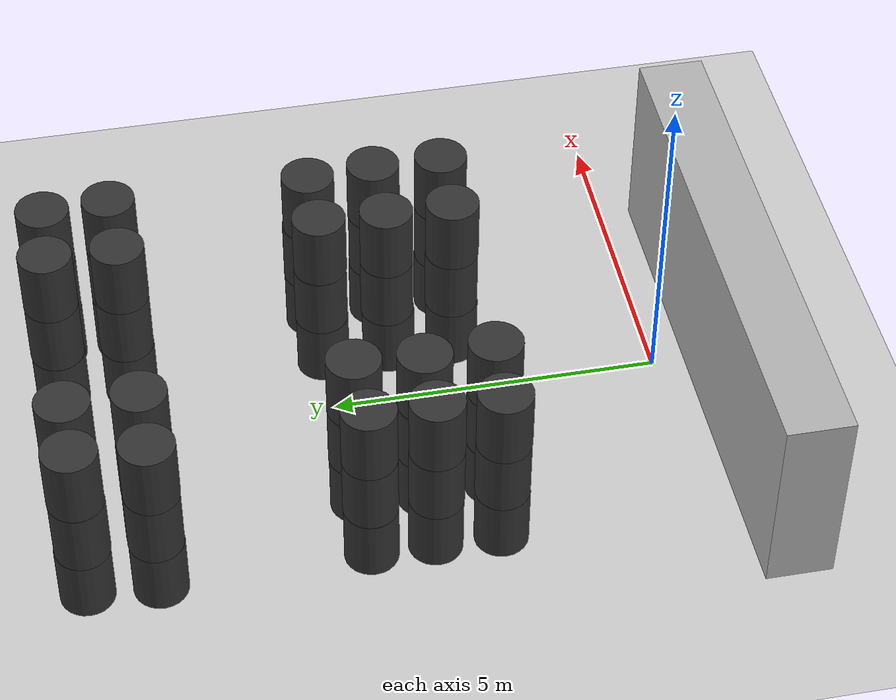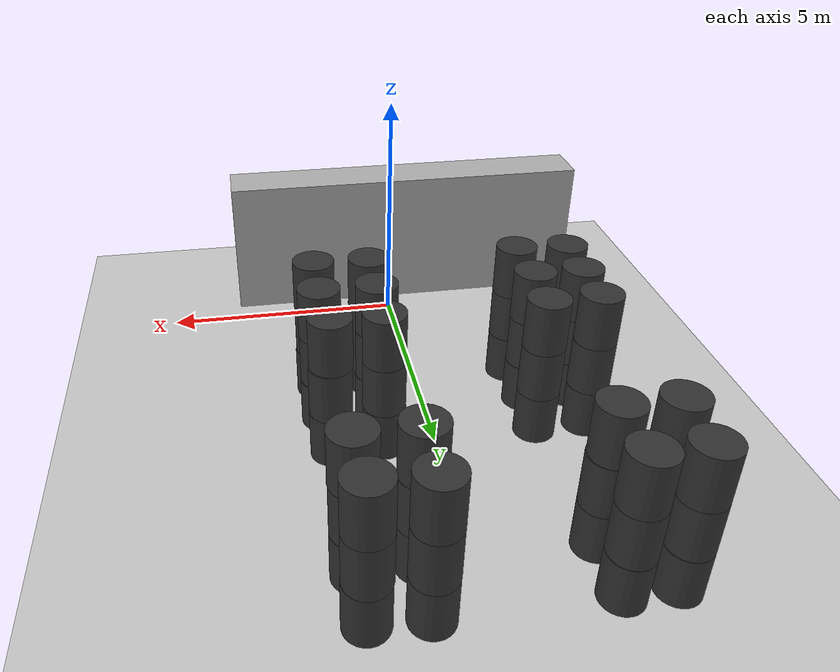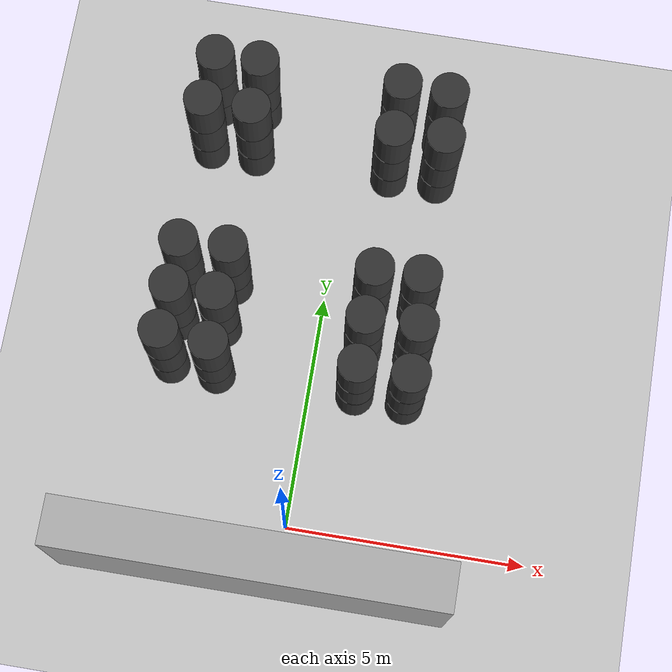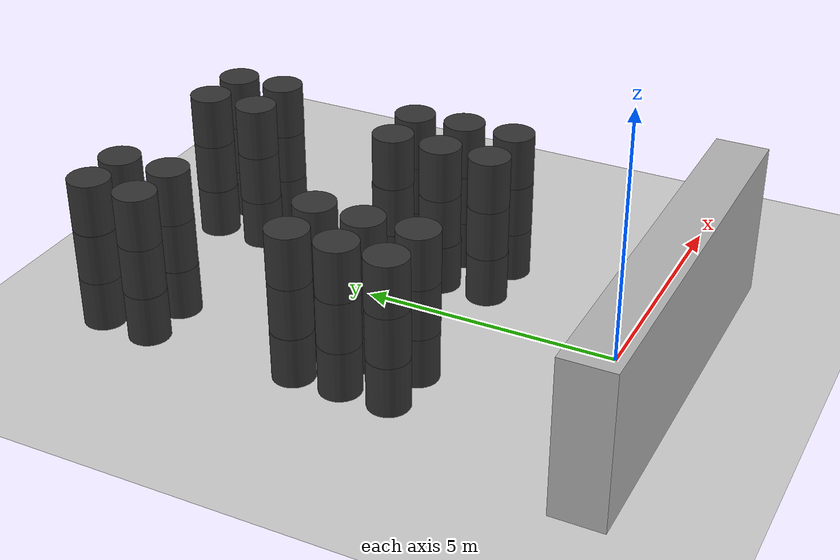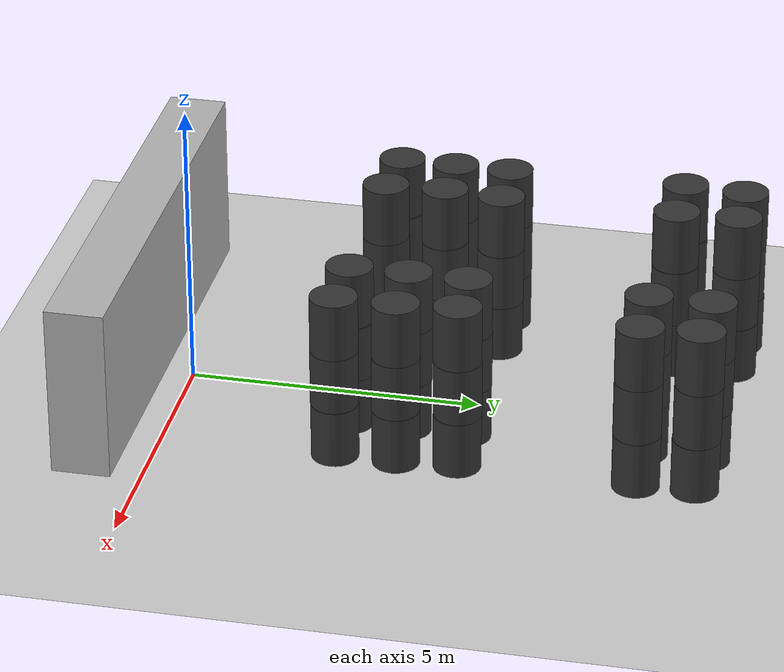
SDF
<sdf version="1.6">
 <world name="default">
  <include><uri>model://ground_plane</uri></include>
  <model name="wall_2">
   <pose frame="sim_world">-0.5 -1.0 1.5 0 0 0</pose>
   <static>True</static>
   <link name="wall_2_link">
    <inertial>
     <mass>100</mass>
     <inertia>
      <ixx>0.166667</ixx>
      <ixy>0</ixy>
      <ixz>0</ixz>
      <iyy>0.166667</iyy>
      <iyz>0</iyz>
      <izz>0.166667</izz>
     </inertia>
    </inertial>
    <collision name="wall_2_collision">
     <geometry><box><size>8.0 1.0 3.0</size></box></geometry>
     <max_contacts>100</max_contacts>
    </collision>
    <visual name="wall_2_visual">
     <geometry><box><size>8.0 1.0 3.0</size></box></geometry>
     <material><ambient>0.7 0.7 0.7 1</ambient><diffuse>0.7 0.7 0.7 1</diffuse></material>
    </visual>
   </link>
  </model>
  <model name="cylinder_0">
   <pose frame="sim_world">-2.99331092369 3.04628800812 0.5 0 -0 0</pose>
   <static>True</static>
   <link name="cylinder_0_link">
    <inertial>
     <mass>100</mass>
     <inertia><ixx>0.145833</ixx><ixy>0</ixy><ixz>0</ixz><iyy>0.145833</iyy><iyz>0</iyz><izz>0.125</izz></inertia>
    </inertial>
    <collision name="cylinder_0_collision">
     <geometry><cylinder><length>1.0</length><radius>0.4</radius></cylinder></geometry>
     <max_contacts>100</max_contacts>
    </collision>
    <visual name="cylinder_0_visual">
     <geometry><cylinder><length>1.0</length><radius>0.4</radius></cylinder></geometry>
     <material><ambient>0.2 0.2 0.2 1</ambient><diffuse>0.2 0.2 0.2 1</diffuse></material>
    </visual>
   </link>
  </model>
  <model name="cylinder_1">
   <pose frame="sim_world">-2.99128336379 3.05090034139 1.5 0 -0 0</pose>
   <static>True</static>
   <link name="cylinder_1_link">
    <inertial>
     <mass>100</mass>
     <inertia><ixx>0.145833</ixx><ixy>0</ixy><ixz>0</ixz><iyy>0.145833</iyy><iyz>0</iyz><izz>0.125</izz></inertia>
    </inertial>
    <collision name="cylinder_1_collision">
     <geometry><cylinder><length>1.0</length><radius>0.4</radius></cylinder></geometry>
     <max_contacts>100</max_contacts>
    </collision>
    <visual name="cylinder_1_visual">
     <geometry><cylinder><length>1.0</length><radius>0.4</radius></cylinder></geometry>
     <material><ambient>0.2 0.2 0.2 1</ambient><diffuse>0.2 0.2 0.2 1</diffuse></material>
    </visual>
   </link>
  </model>
  <model name="cylinder_2">
   <pose frame="sim_world">-3.0080423608 3.05019383698 2.5 0 -0 0</pose>
   <static>True</static>
   <link name="cylinder_2_link">
    <inertial>
     <mass>100</mass>
     <inertia><ixx>0.145833</ixx><ixy>0</ixy><ixz>0</ixz><iyy>0.145833</iyy><iyz>0</iyz><izz>0.125</izz></inertia>
    </inertial>
    <collision name="cylinder_2_collision">
     <geometry><cylinder><length>1.0</length><radius>0.4</radius></cylinder></geometry>
     <max_contacts>100</max_contacts>
    </collision>
    <visual name="cylinder_2_visual">
     <geometry><cylinder><length>1.0</length><radius>0.4</radius></cylinder></geometry>
     <material><ambient>0.2 0.2 0.2 1</ambient><diffuse>0.2 0.2 0.2 1</diffuse></material>
    </visual>
   </link>
  </model>
  <model name="cylinder_3">
   <pose frame="sim_world">-2.97151588663 4.01085530519 0.5 0 -0 0</pose>
   <static>True</static>
   <link name="cylinder_3_link">
    <inertial>
     <mass>100</mass>
     <inertia><ixx>0.145833</ixx><ixy>0</ixy><ixz>0</ixz><iyy>0.145833</iyy><iyz>0</iyz><izz>0.125</izz></inertia>
    </inertial>
    <collision name="cylinder_3_collision">
     <geometry><cylinder><length>1.0</length><radius>0.4</radius></cylinder></geometry>
     <max_contacts>100</max_contacts>
    </collision>
    <visual name="cylinder_3_visual">
     <geometry><cylinder><length>1.0</length><radius>0.4</radius></cylinder></geometry>
     <material><ambient>0.2 0.2 0.2 1</ambient><diffuse>0.2 0.2 0.2 1</diffuse></material>
    </visual>
   </link>
  </model>
  <model name="cylinder_4">
   <pose frame="sim_world">-2.97826024934 4.00481571654 1.5 0 -0 0</pose>
   <static>True</static>
   <link name="cylinder_4_link">
    <inertial>
     <mass>100</mass>
     <inertia><ixx>0.145833</ixx><ixy>0</ixy><ixz>0</ixz><iyy>0.145833</iyy><iyz>0</iyz><izz>0.125</izz></inertia>
    </inertial>
    <collision name="cylinder_4_collision">
     <geometry><cylinder><length>1.0</length><radius>0.4</radius></cylinder></geometry>
     <max_contacts>100</max_contacts>
    </collision>
    <visual name="cylinder_4_visual">
     <geometry><cylinder><length>1.0</length><radius>0.4</radius></cylinder></geometry>
     <material><ambient>0.2 0.2 0.2 1</ambient><diffuse>0.2 0.2 0.2 1</diffuse></material>
    </visual>
   </link>
  </model>
  <model name="cylinder_5">
   <pose frame="sim_world">-2.97621861829 4.0005700455 2.5 0 -0 0</pose>
   <static>True</static>
   <link name="cylinder_5_link">
    <inertial>
     <mass>100</mass>
     <inertia><ixx>0.145833</ixx><ixy>0</ixy><ixz>0</ixz><iyy>0.145833</iyy><iyz>0</iyz><izz>0.125</izz></inertia>
    </inertial>
    <collision name="cylinder_5_collision">
     <geometry><cylinder><length>1.0</length><radius>0.4</radius></cylinder></geometry>
     <max_contacts>100</max_contacts>
    </collision>
    <visual name="cylinder_5_visual">
     <geometry><cylinder><length>1.0</length><radius>0.4</radius></cylinder></geometry>
     <material><ambient>0.2 0.2 0.2 1</ambient><diffuse>0.2 0.2 0.2 1</diffuse></material>
    </visual>
   </link>
  </model>
  <model name="cylinder_6">
   <pose frame="sim_world">-2.97489112418 4.94994942638 0.5 0 -0 0</pose>
   <static>True</static>
   <link name="cylinder_6_link">
    <inertial>
     <mass>100</mass>
     <inertia><ixx>0.145833</ixx><ixy>0</ixy><ixz>0</ixz><iyy>0.145833</iyy><iyz>0</iyz><izz>0.125</izz></inertia>
    </inertial>
    <collision name="cylinder_6_collision">
     <geometry><cylinder><length>1.0</length><radius>0.4</radius></cylinder></geometry>
     <max_contacts>100</max_contacts>
    </collision>
    <visual name="cylinder_6_visual">
     <geometry><cylinder><length>1.0</length><radius>0.4</radius></cylinder></geometry>
     <material><ambient>0.2 0.2 0.2 1</ambient><diffuse>0.2 0.2 0.2 1</diffuse></material>
    </visual>
   </link>
  </model>
  <model name="cylinder_7">
   <pose frame="sim_world">-2.96457506904 4.95433120491 1.5 0 -0 0</pose>
   <static>True</static>
   <link name="cylinder_7_link">
    <inertial>
     <mass>100</mass>
     <inertia><ixx>0.145833</ixx><ixy>0</ixy><ixz>0</ixz><iyy>0.145833</iyy><iyz>0</iyz><izz>0.125</izz></inertia>
    </inertial>
    <collision name="cylinder_7_collision">
     <geometry><cylinder><length>1.0</length><radius>0.4</radius></cylinder></geometry>
     <max_contacts>100</max_contacts>
    </collision>
    <visual name="cylinder_7_visual">
     <geometry><cylinder><length>1.0</length><radius>0.4</radius></cylinder></geometry>
     <material><ambient>0.2 0.2 0.2 1</ambient><diffuse>0.2 0.2 0.2 1</diffuse></material>
    </visual>
   </link>
  </model>
  <model name="cylinder_8">
   <pose frame="sim_world">-2.96331615626 4.95802939447 2.5 0 -0 0</pose>
   <static>True</static>
   <link name="cylinder_8_link">
    <inertial>
     <mass>100</mass>
     <inertia><ixx>0.145833</ixx><ixy>0</ixy><ixz>0</ixz><iyy>0.145833</iyy><iyz>0</iyz><izz>0.125</izz></inertia>
    </inertial>
    <collision name="cylinder_8_collision">
     <geometry><cylinder><length>1.0</length><radius>0.4</radius></cylinder></geometry>
     <max_contacts>100</max_contacts>
    </collision>
    <visual name="cylinder_8_visual">
     <geometry><cylinder><length>1.0</length><radius>0.4</radius></cylinder></geometry>
     <material><ambient>0.2 0.2 0.2 1</ambient><diffuse>0.2 0.2 0.2 1</diffuse></material>
    </visual>
   </link>
  </model>
  <model name="cylinder_9">
   <pose frame="sim_world">-3.02466633321 8.0019167953 0.5 0 -0 0</pose>
   <static>True</static>
   <link name="cylinder_9_link">
    <inertial>
     <mass>100</mass>
     <inertia><ixx>0.145833</ixx><ixy>0</ixy><ixz>0</ixz><iyy>0.145833</iyy><iyz>0</iyz><izz>0.125</izz></inertia>
    </inertial>
    <collision name="cylinder_9_collision">
     <geometry><cylinder><length>1.0</length><radius>0.4</radius></cylinder></geometry>
     <max_contacts>100</max_contacts>
    </collision>
    <visual name="cylinder_9_visual">
     <geometry><cylinder><length>1.0</length><radius>0.4</radius></cylinder></geometry>
     <material><ambient>0.2 0.2 0.2 1</ambient><diffuse>0.2 0.2 0.2 1</diffuse></material>
    </visual>
   </link>
  </model>
  <model name="cylinder_10">
   <pose frame="sim_world">-3.0239855596 8.01013254635 1.5 0 -0 0</pose>
   <static>True</static>
   <link name="cylinder_10_link">
    <inertial>
     <mass>100</mass>
     <inertia><ixx>0.145833</ixx><ixy>0</ixy><ixz>0</ixz><iyy>0.145833</iyy><iyz>0</iyz><izz>0.125</izz></inertia>
    </inertial>
    <collision name="cylinder_10_collision">
     <geometry><cylinder><length>1.0</length><radius>0.4</radius></cylinder></geometry>
     <max_contacts>100</max_contacts>
    </collision>
    <visual name="cylinder_10_visual">
     <geometry><cylinder><length>1.0</length><radius>0.4</radius></cylinder></geometry>
     <material><ambient>0.2 0.2 0.2 1</ambient><diffuse>0.2 0.2 0.2 1</diffuse></material>
    </visual>
   </link>
  </model>
  <model name="cylinder_11">
   <pose frame="sim_world">-3.03300908969 8.00423963865 2.5 0 -0 0</pose>
   <static>True</static>
   <link name="cylinder_11_link">
    <inertial>
     <mass>100</mass>
     <inertia><ixx>0.145833</ixx><ixy>0</ixy><ixz>0</ixz><iyy>0.145833</iyy><iyz>0</iyz><izz>0.125</izz></inertia>
    </inertial>
    <collision name="cylinder_11_collision">
     <geometry><cylinder><length>1.0</length><radius>0.4</radius></cylinder></geometry>
     <max_contacts>100</max_contacts>
    </collision>
    <visual name="cylinder_11_visual">
     <geometry><cylinder><length>1.0</length><radius>0.4</radius></cylinder></geometry>
     <material><ambient>0.2 0.2 0.2 1</ambient><diffuse>0.2 0.2 0.2 1</diffuse></material>
    </visual>
   </link>
  </model>
  <model name="cylinder_12">
   <pose frame="sim_world">-2.96160246649 9.04521391994 0.5 0 -0 0</pose>
   <static>True</static>
   <link name="cylinder_12_link">
    <inertial>
     <mass>100</mass>
     <inertia><ixx>0.145833</ixx><ixy>0</ixy><ixz>0</ixz><iyy>0.145833</iyy><iyz>0</iyz><izz>0.125</izz></inertia>
    </inertial>
    <collision name="cylinder_12_collision">
     <geometry><cylinder><length>1.0</length><radius>0.4</radius></cylinder></geometry>
     <max_contacts>100</max_contacts>
    </collision>
    <visual name="cylinder_12_visual">
     <geometry><cylinder><length>1.0</length><radius>0.4</radius></cylinder></geometry>
     <material><ambient>0.2 0.2 0.2 1</ambient><diffuse>0.2 0.2 0.2 1</diffuse></material>
    </visual>
   </link>
  </model>
  <model name="cylinder_13">
   <pose frame="sim_world">-2.96980164215 9.03584769395 1.5 0 -0 0</pose>
   <static>True</static>
   <link name="cylinder_13_link">
    <inertial>
     <mass>100</mass>
     <inertia><ixx>0.145833</ixx><ixy>0</ixy><ixz>0</ixz><iyy>0.145833</iyy><iyz>0</iyz><izz>0.125</izz></inertia>
    </inertial>
    <collision name="cylinder_13_collision">
     <geometry><cylinder><length>1.0</length><radius>0.4</radius></cylinder></geometry>
     <max_contacts>100</max_contacts>
    </collision>
    <visual name="cylinder_13_visual">
     <geometry><cylinder><length>1.0</length><radius>0.4</radius></cylinder></geometry>
     <material><ambient>0.2 0.2 0.2 1</ambient><diffuse>0.2 0.2 0.2 1</diffuse></material>
    </visual>
   </link>
  </model>
  <model name="cylinder_14">
   <pose frame="sim_world">-2.96016807215 9.04546093262 2.5 0 -0 0</pose>
   <static>True</static>
   <link name="cylinder_14_link">
    <inertial>
     <mass>100</mass>
     <inertia><ixx>0.145833</ixx><ixy>0</ixy><ixz>0</ixz><iyy>0.145833</iyy><iyz>0</iyz><izz>0.125</izz></inertia>
    </inertial>
    <collision name="cylinder_14_collision">
     <geometry><cylinder><length>1.0</length><radius>0.4</radius></cylinder></geometry>
     <max_contacts>100</max_contacts>
    </collision>
    <visual name="cylinder_14_visual">
     <geometry><cylinder><length>1.0</length><radius>0.4</radius></cylinder></geometry>
     <material><ambient>0.2 0.2 0.2 1</ambient><diffuse>0.2 0.2 0.2 1</diffuse></material>
    </visual>
   </link>
  </model>
  <model name="cylinder_45">
   <pose frame="sim_world">-1.9965809761 2.98294327902 0.5 0 -0 0</pose>
   <static>True</static>
   <link name="cylinder_45_link">
    <inertial>
     <mass>100</mass>
     <inertia><ixx>0.145833</ixx><ixy>0</ixy><ixz>0</ixz><iyy>0.145833</iyy><iyz>0</iyz><izz>0.125</izz></inertia>
    </inertial>
    <collision name="cylinder_45_collision">
     <geometry><cylinder><length>1.0</length><radius>0.4</radius></cylinder></geometry>
     <max_contacts>100</max_contacts>
    </collision>
    <visual name="cylinder_45_visual">
     <geometry><cylinder><length>1.0</length><radius>0.4</radius></cylinder></geometry>
     <material><ambient>0.2 0.2 0.2 1</ambient><diffuse>0.2 0.2 0.2 1</diffuse></material>
    </visual>
   </link>
  </model>
  <model name="cylinder_46">
   <pose frame="sim_world">-1.99809626401 2.97375279975 1.5 0 -0 0</pose>
   <static>True</static>
   <link name="cylinder_46_link">
    <inertial>
     <mass>100</mass>
     <inertia><ixx>0.145833</ixx><ixy>0</ixy><ixz>0</ixz><iyy>0.145833</iyy><iyz>0</iyz><izz>0.125</izz></inertia>
    </inertial>
    <collision name="cylinder_46_collision">
     <geometry><cylinder><length>1.0</length><radius>0.4</radius></cylinder></geometry>
     <max_contacts>100</max_contacts>
    </collision>
    <visual name="cylinder_46_visual">
     <geometry><cylinder><length>1.0</length><radius>0.4</radius></cylinder></geometry>
     <material><ambient>0.2 0.2 0.2 1</ambient><diffuse>0.2 0.2 0.2 1</diffuse></material>
    </visual>
   </link>
  </model>
  <model name="cylinder_47">
   <pose frame="sim_world">-1.99705812932 2.97250672579 2.5 0 -0 0</pose>
   <static>True</static>
   <link name="cylinder_47_link">
    <inertial>
     <mass>100</mass>
     <inertia><ixx>0.145833</ixx><ixy>0</ixy><ixz>0</ixz><iyy>0.145833</iyy><iyz>0</iyz><izz>0.125</izz></inertia>
    </inertial>
    <collision name="cylinder_47_collision">
     <geometry><cylinder><length>1.0</length><radius>0.4</radius></cylinder></geometry>
     <max_contacts>100</max_contacts>
    </collision>
    <visual name="cylinder_47_visual">
     <geometry><cylinder><length>1.0</length><radius>0.4</radius></cylinder></geometry>
     <material><ambient>0.2 0.2 0.2 1</ambient><diffuse>0.2 0.2 0.2 1</diffuse></material>
    </visual>
   </link>
  </model>
  <model name="cylinder_48">
   <pose frame="sim_world">-2.0396847009 4.00374695528 0.5 0 -0 0</pose>
   <static>True</static>
   <link name="cylinder_48_link">
    <inertial>
     <mass>100</mass>
     <inertia><ixx>0.145833</ixx><ixy>0</ixy><ixz>0</ixz><iyy>0.145833</iyy><iyz>0</iyz><izz>0.125</izz></inertia>
    </inertial>
    <collision name="cylinder_48_collision">
     <geometry><cylinder><length>1.0</length><radius>0.4</radius></cylinder></geometry>
     <max_contacts>100</max_contacts>
    </collision>
    <visual name="cylinder_48_visual">
     <geometry><cylinder><length>1.0</length><radius>0.4</radius></cylinder></geometry>
     <material><ambient>0.2 0.2 0.2 1</ambient><diffuse>0.2 0.2 0.2 1</diffuse></material>
    </visual>
   </link>
   <model name="radiation_source_cylinder_48">
    <static>true</static>
    <link name="link_radiation_source_cylinder_48">
     <visual name="visual_radiation_source_cylinder_48_0">
      <geometry><box><size>0.1 0.1 0.1</size></box></geometry>
      <material><ambient>1 0.0  0 1.0</ambient><diffuse>1 0.0  0 1.0</diffuse></material>
     </visual>
     <visual name="visual_radiation_source_cylinder_48_1">
      <pose>0 0 2.0 0 0 0</pose>
      <geometry><box><size>0.1 0.1 0.1</size></box></geometry>
      <material><ambient>0 1.0  0 1.0</ambient><diffuse>0 1.0  0 1.0</diffuse></material>
     </visual>
     <sensor name="radiation_source_cylinder_48" type="radiation_source">
      <always_on>1</always_on>
      <update_rate>100.0</update_rate>
      <topic>source_0/gamma</topic>
      <plugin filename="libradiation_source_plugin.so" name="radiation_source_plugin"/>
     </sensor>
    </link>
   </model>
  </model>
  <model name="cylinder_49">
   <pose frame="sim_world">-2.04642130865 4.00503901667 1.5 0 -0 0</pose>
   <static>True</static>
   <link name="cylinder_49_link">
    <inertial>
     <mass>100</mass>
     <inertia><ixx>0.145833</ixx><ixy>0</ixy><ixz>0</ixz><iyy>0.145833</iyy><iyz>0</iyz><izz>0.125</izz></inertia>
    </inertial>
    <collision name="cylinder_49_collision">
     <geometry><cylinder><length>1.0</length><radius>0.4</radius></cylinder></geometry>
     <max_contacts>100</max_contacts>
    </collision>
    <visual name="cylinder_49_visual">
     <geometry><cylinder><length>1.0</length><radius>0.4</radius></cylinder></geometry>
     <material><ambient>0.2 0.2 0.2 1</ambient><diffuse>0.2 0.2 0.2 1</diffuse></material>
    </visual>
   </link>
  </model>
  <model name="cylinder_50">
   <pose frame="sim_world">-2.042014486 3.99655097344 2.5 0 -0 0</pose>
   <static>True</static>
   <link name="cylinder_50_link">
    <inertial>
     <mass>100</mass>
     <inertia><ixx>0.145833</ixx><ixy>0</ixy><ixz>0</ixz><iyy>0.145833</iyy><iyz>0</iyz><izz>0.125</izz></inertia>
    </inertial>
    <collision name="cylinder_50_collision">
     <geometry><cylinder><length>1.0</length><radius>0.4</radius></cylinder></geometry>
     <max_contacts>100</max_contacts>
    </collision>
    <visual name="cylinder_50_visual">
     <geometry><cylinder><length>1.0</length><radius>0.4</radius></cylinder></geometry>
     <material><ambient>0.2 0.2 0.2 1</ambient><diffuse>0.2 0.2 0.2 1</diffuse></material>
    </visual>
   </link>
  </model>
  <model name="cylinder_51">
   <pose frame="sim_world">-1.96935428081 4.98453832237 0.5 0 -0 0</pose>
   <static>True</static>
   <link name="cylinder_51_link">
    <inertial>
     <mass>100</mass>
     <inertia><ixx>0.145833</ixx><ixy>0</ixy><ixz>0</ixz><iyy>0.145833</iyy><iyz>0</iyz><izz>0.125</izz></inertia>
    </inertial>
    <collision name="cylinder_51_collision">
     <geometry><cylinder><length>1.0</length><radius>0.4</radius></cylinder></geometry>
     <max_contacts>100</max_contacts>
    </collision>
    <visual name="cylinder_51_visual">
     <geometry><cylinder><length>1.0</length><radius>0.4</radius></cylinder></geometry>
     <material><ambient>0.2 0.2 0.2 1</ambient><diffuse>0.2 0.2 0.2 1</diffuse></material>
    </visual>
   </link>
  </model>
  <model name="cylinder_52">
   <pose frame="sim_world">-1.96369637914 4.99325317425 1.5 0 -0 0</pose>
   <static>True</static>
   <link name="cylinder_52_link">
    <inertial>
     <mass>100</mass>
     <inertia><ixx>0.145833</ixx><ixy>0</ixy><ixz>0</ixz><iyy>0.145833</iyy><iyz>0</iyz><izz>0.125</izz></inertia>
    </inertial>
    <collision name="cylinder_52_collision">
     <geometry><cylinder><length>1.0</length><radius>0.4</radius></cylinder></geometry>
     <max_contacts>100</max_contacts>
    </collision>
    <visual name="cylinder_52_visual">
     <geometry><cylinder><length>1.0</length><radius>0.4</radius></cylinder></geometry>
     <material><ambient>0.2 0.2 0.2 1</ambient><diffuse>0.2 0.2 0.2 1</diffuse></material>
    </visual>
   </link>
  </model>
  <model name="cylinder_53">
   <pose frame="sim_world">-1.96638210553 4.99357972346 2.5 0 -0 0</pose>
   <static>True</static>
   <link name="cylinder_53_link">
    <inertial>
     <mass>100</mass>
     <inertia><ixx>0.145833</ixx><ixy>0</ixy><ixz>0</ixz><iyy>0.145833</iyy><iyz>0</iyz><izz>0.125</izz></inertia>
    </inertial>
    <collision name="cylinder_53_collision">
     <geometry><cylinder><length>1.0</length><radius>0.4</radius></cylinder></geometry>
     <max_contacts>100</max_contacts>
    </collision>
    <visual name="cylinder_53_visual">
     <geometry><cylinder><length>1.0</length><radius>0.4</radius></cylinder></geometry>
     <material><ambient>0.2 0.2 0.2 1</ambient><diffuse>0.2 0.2 0.2 1</diffuse></material>
    </visual>
   </link>
  </model>
  <model name="cylinder_54">
   <pose frame="sim_world">-2.00919037113 7.99558735155 0.5 0 -0 0</pose>
   <static>True</static>
   <link name="cylinder_54_link">
    <inertial>
     <mass>100</mass>
     <inertia><ixx>0.145833</ixx><ixy>0</ixy><ixz>0</ixz><iyy>0.145833</iyy><iyz>0</iyz><izz>0.125</izz></inertia>
    </inertial>
    <collision name="cylinder_54_collision">
     <geometry><cylinder><length>1.0</length><radius>0.4</radius></cylinder></geometry>
     <max_contacts>100</max_contacts>
    </collision>
    <visual name="cylinder_54_visual">
     <geometry><cylinder><length>1.0</length><radius>0.4</radius></cylinder></geometry>
     <material><ambient>0.2 0.2 0.2 1</ambient><diffuse>0.2 0.2 0.2 1</diffuse></material>
    </visual>
   </link>
  </model>
  <model name="cylinder_55">
   <pose frame="sim_world">-2.00768485973 8.00068690969 1.5 0 -0 0</pose>
   <static>True</static>
   <link name="cylinder_55_link">
    <inertial>
     <mass>100</mass>
     <inertia><ixx>0.145833</ixx><ixy>0</ixy><ixz>0</ixz><iyy>0.145833</iyy><iyz>0</iyz><izz>0.125</izz></inertia>
    </inertial>
    <collision name="cylinder_55_collision">
     <geometry><cylinder><length>1.0</length><radius>0.4</radius></cylinder></geometry>
     <max_contacts>100</max_contacts>
    </collision>
    <visual name="cylinder_55_visual">
     <geometry><cylinder><length>1.0</length><radius>0.4</radius></cylinder></geometry>
     <material><ambient>0.2 0.2 0.2 1</ambient><diffuse>0.2 0.2 0.2 1</diffuse></material>
    </visual>
   </link>
  </model>
  <model name="cylinder_56">
   <pose frame="sim_world">-2.02386634613 7.99578511601 2.5 0 -0 0</pose>
   <static>True</static>
   <link name="cylinder_56_link">
    <inertial>
     <mass>100</mass>
     <inertia><ixx>0.145833</ixx><ixy>0</ixy><ixz>0</ixz><iyy>0.145833</iyy><iyz>0</iyz><izz>0.125</izz></inertia>
    </inertial>
    <collision name="cylinder_56_collision">
     <geometry><cylinder><length>1.0</length><radius>0.4</radius></cylinder></geometry>
     <max_contacts>100</max_contacts>
    </collision>
    <visual name="cylinder_56_visual">
     <geometry><cylinder><length>1.0</length><radius>0.4</radius></cylinder></geometry>
     <material><ambient>0.2 0.2 0.2 1</ambient><diffuse>0.2 0.2 0.2 1</diffuse></material>
    </visual>
   </link>
  </model>
  <model name="cylinder_57">
   <pose frame="sim_world">-2.03265426036 9.05511991973 0.5 0 -0 0</pose>
   <static>True</static>
   <link name="cylinder_57_link">
    <inertial>
     <mass>100</mass>
     <inertia><ixx>0.145833</ixx><ixy>0</ixy><ixz>0</ixz><iyy>0.145833</iyy><iyz>0</iyz><izz>0.125</izz></inertia>
    </inertial>
    <collision name="cylinder_57_collision">
     <geometry><cylinder><length>1.0</length><radius>0.4</radius></cylinder></geometry>
     <max_contacts>100</max_contacts>
    </collision>
    <visual name="cylinder_57_visual">
     <geometry><cylinder><length>1.0</length><radius>0.4</radius></cylinder></geometry>
     <material><ambient>0.2 0.2 0.2 1</ambient><diffuse>0.2 0.2 0.2 1</diffuse></material>
    </visual>
   </link>
  </model>
  <model name="cylinder_58">
   <pose frame="sim_world">-2.03909711334 9.04867957451 1.5 0 -0 0</pose>
   <static>True</static>
   <link name="cylinder_58_link">
    <inertial>
     <mass>100</mass>
     <inertia><ixx>0.145833</ixx><ixy>0</ixy><ixz>0</ixz><iyy>0.145833</iyy><iyz>0</iyz><izz>0.125</izz></inertia>
    </inertial>
    <collision name="cylinder_58_collision">
     <geometry><cylinder><length>1.0</length><radius>0.4</radius></cylinder></geometry>
     <max_contacts>100</max_contacts>
    </collision>
    <visual name="cylinder_58_visual">
     <geometry><cylinder><length>1.0</length><radius>0.4</radius></cylinder></geometry>
     <material><ambient>0.2 0.2 0.2 1</ambient><diffuse>0.2 0.2 0.2 1</diffuse></material>
    </visual>
   </link>
  </model>
  <model name="cylinder_59">
   <pose frame="sim_world">-2.02379885524 9.05241032436 2.5 0 -0 0</pose>
   <static>True</static>
   <link name="cylinder_59_link">
    <inertial>
     <mass>100</mass>
     <inertia><ixx>0.145833</ixx><ixy>0</ixy><ixz>0</ixz><iyy>0.145833</iyy><iyz>0</iyz><izz>0.125</izz></inertia>
    </inertial>
    <collision name="cylinder_59_collision">
     <geometry><cylinder><length>1.0</length><radius>0.4</radius></cylinder></geometry>
     <max_contacts>100</max_contacts>
    </collision>
    <visual name="cylinder_59_visual">
     <geometry><cylinder><length>1.0</length><radius>0.4</radius></cylinder></geometry>
     <material><ambient>0.2 0.2 0.2 1</ambient><diffuse>0.2 0.2 0.2 1</diffuse></material>
    </visual>
   </link>
  </model>
  <model name="cylinder_90">
   <pose frame="sim_world">0.975886664659 2.99407561772 0.5 0 -0 0</pose>
   <static>True</static>
   <link name="cylinder_90_link">
    <inertial>
     <mass>100</mass>
     <inertia><ixx>0.145833</ixx><ixy>0</ixy><ixz>0</ixz><iyy>0.145833</iyy><iyz>0</iyz><izz>0.125</izz></inertia>
    </inertial>
    <collision name="cylinder_90_collision">
     <geometry><cylinder><length>1.0</length><radius>0.4</radius></cylinder></geometry>
     <max_contacts>100</max_contacts>
    </collision>
    <visual name="cylinder_90_visual">
     <geometry><cylinder><length>1.0</length><radius>0.4</radius></cylinder></geometry>
     <material><ambient>0.2 0.2 0.2 1</ambient><diffuse>0.2 0.2 0.2 1</diffuse></material>
    </visual>
   </link>
  </model>
  <model name="cylinder_91">
   <pose frame="sim_world">0.973525885252 3.00282759207 1.5 0 -0 0</pose>
   <static>True</static>
   <link name="cylinder_91_link">
    <inertial>
     <mass>100</mass>
     <inertia><ixx>0.145833</ixx><ixy>0</ixy><ixz>0</ixz><iyy>0.145833</iyy><iyz>0</iyz><izz>0.125</izz></inertia>
    </inertial>
    <collision name="cylinder_91_collision">
     <geometry><cylinder><length>1.0</length><radius>0.4</radius></cylinder></geometry>
     <max_contacts>100</max_contacts>
    </collision>
    <visual name="cylinder_91_visual">
     <geometry><cylinder><length>1.0</length><radius>0.4</radius></cylinder></geometry>
     <material><ambient>0.2 0.2 0.2 1</ambient><diffuse>0.2 0.2 0.2 1</diffuse></material>
    </visual>
   </link>
  </model>
  <model name="cylinder_92">
   <pose frame="sim_world">0.969030290826 2.99612800961 2.5 0 -0 0</pose>
   <static>True</static>
   <link name="cylinder_92_link">
    <inertial>
     <mass>100</mass>
     <inertia><ixx>0.145833</ixx><ixy>0</ixy><ixz>0</ixz><iyy>0.145833</iyy><iyz>0</iyz><izz>0.125</izz></inertia>
    </inertial>
    <collision name="cylinder_92_collision">
     <geometry><cylinder><length>1.0</length><radius>0.4</radius></cylinder></geometry>
     <max_contacts>100</max_contacts>
    </collision>
    <visual name="cylinder_92_visual">
     <geometry><cylinder><length>1.0</length><radius>0.4</radius></cylinder></geometry>
     <material><ambient>0.2 0.2 0.2 1</ambient><diffuse>0.2 0.2 0.2 1</diffuse></material>
    </visual>
   </link>
  </model>
  <model name="cylinder_93">
   <pose frame="sim_world">0.986058464239 3.9816153806 0.5 0 -0 0</pose>
   <static>True</static>
   <link name="cylinder_93_link">
    <inertial>
     <mass>100</mass>
     <inertia><ixx>0.145833</ixx><ixy>0</ixy><ixz>0</ixz><iyy>0.145833</iyy><iyz>0</iyz><izz>0.125</izz></inertia>
    </inertial>
    <collision name="cylinder_93_collision">
     <geometry><cylinder><length>1.0</length><radius>0.4</radius></cylinder></geometry>
     <max_contacts>100</max_contacts>
    </collision>
    <visual name="cylinder_93_visual">
     <geometry><cylinder><length>1.0</length><radius>0.4</radius></cylinder></geometry>
     <material><ambient>0.2 0.2 0.2 1</ambient><diffuse>0.2 0.2 0.2 1</diffuse></material>
    </visual>
   </link>
  </model>
  <model name="cylinder_94">
   <pose frame="sim_world">0.974024711108 3.99916762449 1.5 0 -0 0</pose>
   <static>True</static>
   <link name="cylinder_94_link">
    <inertial>
     <mass>100</mass>
     <inertia><ixx>0.145833</ixx><ixy>0</ixy><ixz>0</ixz><iyy>0.145833</iyy><iyz>0</iyz><izz>0.125</izz></inertia>
    </inertial>
    <collision name="cylinder_94_collision">
     <geometry><cylinder><length>1.0</length><radius>0.4</radius></cylinder></geometry>
     <max_contacts>100</max_contacts>
    </collision>
    <visual name="cylinder_94_visual">
     <geometry><cylinder><length>1.0</length><radius>0.4</radius></cylinder></geometry>
     <material><ambient>0.2 0.2 0.2 1</ambient><diffuse>0.2 0.2 0.2 1</diffuse></material>
    </visual>
   </link>
  </model>
  <model name="cylinder_95">
   <pose frame="sim_world">0.975513323032 3.99582434388 2.5 0 -0 0</pose>
   <static>True</static>
   <link name="cylinder_95_link">
    <inertial>
     <mass>100</mass>
     <inertia><ixx>0.145833</ixx><ixy>0</ixy><ixz>0</ixz><iyy>0.145833</iyy><iyz>0</iyz><izz>0.125</izz></inertia>
    </inertial>
    <collision name="cylinder_95_collision">
     <geometry><cylinder><length>1.0</length><radius>0.4</radius></cylinder></geometry>
     <max_contacts>100</max_contacts>
    </collision>
    <visual name="cylinder_95_visual">
     <geometry><cylinder><length>1.0</length><radius>0.4</radius></cylinder></geometry>
     <material><ambient>0.2 0.2 0.2 1</ambient><diffuse>0.2 0.2 0.2 1</diffuse></material>
    </visual>
   </link>
  </model>
  <model name="cylinder_96">
   <pose frame="sim_world">0.993848085445 4.99994176826 0.5 0 -0 0</pose>
   <static>True</static>
   <link name="cylinder_96_link">
    <inertial>
     <mass>100</mass>
     <inertia><ixx>0.145833</ixx><ixy>0</ixy><ixz>0</ixz><iyy>0.145833</iyy><iyz>0</iyz><izz>0.125</izz></inertia>
    </inertial>
    <collision name="cylinder_96_collision">
     <geometry><cylinder><length>1.0</length><radius>0.4</radius></cylinder></geometry>
     <max_contacts>100</max_contacts>
    </collision>
    <visual name="cylinder_96_visual">
     <geometry><cylinder><length>1.0</length><radius>0.4</radius></cylinder></geometry>
     <material><ambient>0.2 0.2 0.2 1</ambient><diffuse>0.2 0.2 0.2 1</diffuse></material>
    </visual>
   </link>
  </model>
  <model name="cylinder_97">
   <pose frame="sim_world">0.998746614733 5.00750590574 1.5 0 -0 0</pose>
   <static>True</static>
   <link name="cylinder_97_link">
    <inertial>
     <mass>100</mass>
     <inertia><ixx>0.145833</ixx><ixy>0</ixy><ixz>0</ixz><iyy>0.145833</iyy><iyz>0</iyz><izz>0.125</izz></inertia>
    </inertial>
    <collision name="cylinder_97_collision">
     <geometry><cylinder><length>1.0</length><radius>0.4</radius></cylinder></geometry>
     <max_contacts>100</max_contacts>
    </collision>
    <visual name="cylinder_97_visual">
     <geometry><cylinder><length>1.0</length><radius>0.4</radius></cylinder></geometry>
     <material><ambient>0.2 0.2 0.2 1</ambient><diffuse>0.2 0.2 0.2 1</diffuse></material>
    </visual>
   </link>
  </model>
  <model name="cylinder_98">
   <pose frame="sim_world">1.00514432976 5.00085520018 2.5 0 -0 0</pose>
   <static>True</static>
   <link name="cylinder_98_link">
    <inertial>
     <mass>100</mass>
     <inertia><ixx>0.145833</ixx><ixy>0</ixy><ixz>0</ixz><iyy>0.145833</iyy><iyz>0</iyz><izz>0.125</izz></inertia>
    </inertial>
    <collision name="cylinder_98_collision">
     <geometry><cylinder><length>1.0</length><radius>0.4</radius></cylinder></geometry>
     <max_contacts>100</max_contacts>
    </collision>
    <visual name="cylinder_98_visual">
     <geometry><cylinder><length>1.0</length><radius>0.4</radius></cylinder></geometry>
     <material><ambient>0.2 0.2 0.2 1</ambient><diffuse>0.2 0.2 0.2 1</diffuse></material>
    </visual>
   </link>
  </model>
  <model name="cylinder_99">
   <pose frame="sim_world">0.952070864632 7.97619141316 0.5 0 -0 0</pose>
   <static>True</static>
   <link name="cylinder_99_link">
    <inertial>
     <mass>100</mass>
     <inertia><ixx>0.145833</ixx><ixy>0</ixy><ixz>0</ixz><iyy>0.145833</iyy><iyz>0</iyz><izz>0.125</izz></inertia>
    </inertial>
    <collision name="cylinder_99_collision">
     <geometry><cylinder><length>1.0</length><radius>0.4</radius></cylinder></geometry>
     <max_contacts>100</max_contacts>
    </collision>
    <visual name="cylinder_99_visual">
     <geometry><cylinder><length>1.0</length><radius>0.4</radius></cylinder></geometry>
     <material><ambient>0.2 0.2 0.2 1</ambient><diffuse>0.2 0.2 0.2 1</diffuse></material>
    </visual>
   </link>
  </model>
  <model name="cylinder_100">
   <pose frame="sim_world">0.947166910341 7.98427505174 1.5 0 -0 0</pose>
   <static>True</static>
   <link name="cylinder_100_link">
    <inertial>
     <mass>100</mass>
     <inertia><ixx>0.145833</ixx><ixy>0</ixy><ixz>0</ixz><iyy>0.145833</iyy><iyz>0</iyz><izz>0.125</izz></inertia>
    </inertial>
    <collision name="cylinder_100_collision">
     <geometry><cylinder><length>1.0</length><radius>0.4</radius></cylinder></geometry>
     <max_contacts>100</max_contacts>
    </collision>
    <visual name="cylinder_100_visual">
     <geometry><cylinder><length>1.0</length><radius>0.4</radius></cylinder></geometry>
     <material><ambient>0.2 0.2 0.2 1</ambient><diffuse>0.2 0.2 0.2 1</diffuse></material>
    </visual>
   </link>
  </model>
  <model name="cylinder_101">
   <pose frame="sim_world">0.947367659361 7.98091872759 2.5 0 -0 0</pose>
   <static>True</static>
   <link name="cylinder_101_link">
    <inertial>
     <mass>100</mass>
     <inertia><ixx>0.145833</ixx><ixy>0</ixy><ixz>0</ixz><iyy>0.145833</iyy><iyz>0</iyz><izz>0.125</izz></inertia>
    </inertial>
    <collision name="cylinder_101_collision">
     <geometry><cylinder><length>1.0</length><radius>0.4</radius></cylinder></geometry>
     <max_contacts>100</max_contacts>
    </collision>
    <visual name="cylinder_101_visual">
     <geometry><cylinder><length>1.0</length><radius>0.4</radius></cylinder></geometry>
     <material><ambient>0.2 0.2 0.2 1</ambient><diffuse>0.2 0.2 0.2 1</diffuse></material>
    </visual>
   </link>
  </model>
  <model name="cylinder_102">
   <pose frame="sim_world">0.964550752473 9.01916123007 0.5 0 -0 0</pose>
   <static>True</static>
   <link name="cylinder_102_link">
    <inertial>
     <mass>100</mass>
     <inertia><ixx>0.145833</ixx><ixy>0</ixy><ixz>0</ixz><iyy>0.145833</iyy><iyz>0</iyz><izz>0.125</izz></inertia>
    </inertial>
    <collision name="cylinder_102_collision">
     <geometry><cylinder><length>1.0</length><radius>0.4</radius></cylinder></geometry>
     <max_contacts>100</max_contacts>
    </collision>
    <visual name="cylinder_102_visual">
     <geometry><cylinder><length>1.0</length><radius>0.4</radius></cylinder></geometry>
     <material><ambient>0.2 0.2 0.2 1</ambient><diffuse>0.2 0.2 0.2 1</diffuse></material>
    </visual>
   </link>
   <model name="radiation_source_cylinder_102">
    <static>true</static>
    <link name="link_radiation_source_cylinder_102">
     <visual name="visual_radiation_source_cylinder_102_0">
      <geometry><box><size>0.1 0.1 0.1</size></box></geometry>
      <material><ambient>1 0.0  0 1.0</ambient><diffuse>1 0.0  0 1.0</diffuse></material>
     </visual>
     <visual name="visual_radiation_source_cylinder_102_1">
      <pose>0 0 2.0 0 0 0</pose>
      <geometry><box><size>0.1 0.1 0.1</size></box></geometry>
      <material><ambient>0 1.0  0 1.0</ambient><diffuse>0 1.0  0 1.0</diffuse></material>
     </visual>
     <sensor name="radiation_source_cylinder_102" type="radiation_source">
      <always_on>1</always_on>
      <update_rate>100.0</update_rate>
      <topic>source_1/gamma</topic>
      <plugin filename="libradiation_source_plugin.so" name="radiation_source_plugin"/>
     </sensor>
    </link>
   </model>
  </model>
  <model name="cylinder_103">
   <pose frame="sim_world">0.96522333195 9.02850622171 1.5 0 -0 0</pose>
   <static>True</static>
   <link name="cylinder_103_link">
    <inertial>
     <mass>100</mass>
     <inertia><ixx>0.145833</ixx><ixy>0</ixy><ixz>0</ixz><iyy>0.145833</iyy><iyz>0</iyz><izz>0.125</izz></inertia>
    </inertial>
    <collision name="cylinder_103_collision">
     <geometry><cylinder><length>1.0</length><radius>0.4</radius></cylinder></geometry>
     <max_contacts>100</max_contacts>
    </collision>
    <visual name="cylinder_103_visual">
     <geometry><cylinder><length>1.0</length><radius>0.4</radius></cylinder></geometry>
     <material><ambient>0.2 0.2 0.2 1</ambient><diffuse>0.2 0.2 0.2 1</diffuse></material>
    </visual>
   </link>
  </model>
  <model name="cylinder_104">
   <pose frame="sim_world">0.964097371379 9.03187363293 2.5 0 -0 0</pose>
   <static>True</static>
   <link name="cylinder_104_link">
    <inertial>
     <mass>100</mass>
     <inertia><ixx>0.145833</ixx><ixy>0</ixy><ixz>0</ixz><iyy>0.145833</iyy><iyz>0</iyz><izz>0.125</izz></inertia>
    </inertial>
    <collision name="cylinder_104_collision">
     <geometry><cylinder><length>1.0</length><radius>0.4</radius></cylinder></geometry>
     <max_contacts>100</max_contacts>
    </collision>
    <visual name="cylinder_104_visual">
     <geometry><cylinder><length>1.0</length><radius>0.4</radius></cylinder></geometry>
     <material><ambient>0.2 0.2 0.2 1</ambient><diffuse>0.2 0.2 0.2 1</diffuse></material>
    </visual>
   </link>
  </model>
  <model name="cylinder_135">
   <pose frame="sim_world">2.0425958729 2.97068898892 0.5 0 -0 0</pose>
   <static>True</static>
   <link name="cylinder_135_link">
    <inertial>
     <mass>100</mass>
     <inertia><ixx>0.145833</ixx><ixy>0</ixy><ixz>0</ixz><iyy>0.145833</iyy><iyz>0</iyz><izz>0.125</izz></inertia>
    </inertial>
    <collision name="cylinder_135_collision">
     <geometry><cylinder><length>1.0</length><radius>0.4</radius></cylinder></geometry>
     <max_contacts>100</max_contacts>
    </collision>
    <visual name="cylinder_135_visual">
     <geometry><cylinder><length>1.0</length><radius>0.4</radius></cylinder></geometry>
     <material><ambient>0.2 0.2 0.2 1</ambient><diffuse>0.2 0.2 0.2 1</diffuse></material>
    </visual>
   </link>
  </model>
  <model name="cylinder_136">
   <pose frame="sim_world">2.02855404543 2.96258887991 1.5 0 -0 0</pose>
   <static>True</static>
   <link name="cylinder_136_link">
    <inertial>
     <mass>100</mass>
     <inertia><ixx>0.145833</ixx><ixy>0</ixy><ixz>0</ixz><iyy>0.145833</iyy><iyz>0</iyz><izz>0.125</izz></inertia>
    </inertial>
    <collision name="cylinder_136_collision">
     <geometry><cylinder><length>1.0</length><radius>0.4</radius></cylinder></geometry>
     <max_contacts>100</max_contacts>
    </collision>
    <visual name="cylinder_136_visual">
     <geometry><cylinder><length>1.0</length><radius>0.4</radius></cylinder></geometry>
     <material><ambient>0.2 0.2 0.2 1</ambient><diffuse>0.2 0.2 0.2 1</diffuse></material>
    </visual>
   </link>
  </model>
  <model name="cylinder_137">
   <pose frame="sim_world">2.03694598921 2.96733902205 2.5 0 -0 0</pose>
   <static>True</static>
   <link name="cylinder_137_link">
    <inertial>
     <mass>100</mass>
     <inertia><ixx>0.145833</ixx><ixy>0</ixy><ixz>0</ixz><iyy>0.145833</iyy><iyz>0</iyz><izz>0.125</izz></inertia>
    </inertial>
    <collision name="cylinder_137_collision">
     <geometry><cylinder><length>1.0</length><radius>0.4</radius></cylinder></geometry>
     <max_contacts>100</max_contacts>
    </collision>
    <visual name="cylinder_137_visual">
     <geometry><cylinder><length>1.0</length><radius>0.4</radius></cylinder></geometry>
     <material><ambient>0.2 0.2 0.2 1</ambient><diffuse>0.2 0.2 0.2 1</diffuse></material>
    </visual>
   </link>
  </model>
  <model name="cylinder_138">
   <pose frame="sim_world">2.04738963252 4.00387168707 0.5 0 -0 0</pose>
   <static>True</static>
   <link name="cylinder_138_link">
    <inertial>
     <mass>100</mass>
     <inertia><ixx>0.145833</ixx><ixy>0</ixy><ixz>0</ixz><iyy>0.145833</iyy><iyz>0</iyz><izz>0.125</izz></inertia>
    </inertial>
    <collision name="cylinder_138_collision">
     <geometry><cylinder><length>1.0</length><radius>0.4</radius></cylinder></geometry>
     <max_contacts>100</max_contacts>
    </collision>
    <visual name="cylinder_138_visual">
     <geometry><cylinder><length>1.0</length><radius>0.4</radius></cylinder></geometry>
     <material><ambient>0.2 0.2 0.2 1</ambient><diffuse>0.2 0.2 0.2 1</diffuse></material>
    </visual>
   </link>
  </model>
  <model name="cylinder_139">
   <pose frame="sim_world">2.03775839042 3.99586983522 1.5 0 -0 0</pose>
   <static>True</static>
   <link name="cylinder_139_link">
    <inertial>
     <mass>100</mass>
     <inertia><ixx>0.145833</ixx><ixy>0</ixy><ixz>0</ixz><iyy>0.145833</iyy><iyz>0</iyz><izz>0.125</izz></inertia>
    </inertial>
    <collision name="cylinder_139_collision">
     <geometry><cylinder><length>1.0</length><radius>0.4</radius></cylinder></geometry>
     <max_contacts>100</max_contacts>
    </collision>
    <visual name="cylinder_139_visual">
     <geometry><cylinder><length>1.0</length><radius>0.4</radius></cylinder></geometry>
     <material><ambient>0.2 0.2 0.2 1</ambient><diffuse>0.2 0.2 0.2 1</diffuse></material>
    </visual>
   </link>
  </model>
  <model name="cylinder_140">
   <pose frame="sim_world">2.04664717862 4.00398002636 2.5 0 -0 0</pose>
   <static>True</static>
   <link name="cylinder_140_link">
    <inertial>
     <mass>100</mass>
     <inertia><ixx>0.145833</ixx><ixy>0</ixy><ixz>0</ixz><iyy>0.145833</iyy><iyz>0</iyz><izz>0.125</izz></inertia>
    </inertial>
    <collision name="cylinder_140_collision">
     <geometry><cylinder><length>1.0</length><radius>0.4</radius></cylinder></geometry>
     <max_contacts>100</max_contacts>
    </collision>
    <visual name="cylinder_140_visual">
     <geometry><cylinder><length>1.0</length><radius>0.4</radius></cylinder></geometry>
     <material><ambient>0.2 0.2 0.2 1</ambient><diffuse>0.2 0.2 0.2 1</diffuse></material>
    </visual>
   </link>
  </model>
  <model name="cylinder_141">
   <pose frame="sim_world">1.98526346034 5.02119051794 0.5 0 -0 0</pose>
   <static>True</static>
   <link name="cylinder_141_link">
    <inertial>
     <mass>100</mass>
     <inertia><ixx>0.145833</ixx><ixy>0</ixy><ixz>0</ixz><iyy>0.145833</iyy><iyz>0</iyz><izz>0.125</izz></inertia>
    </inertial>
    <collision name="cylinder_141_collision">
     <geometry><cylinder><length>1.0</length><radius>0.4</radius></cylinder></geometry>
     <max_contacts>100</max_contacts>
    </collision>
    <visual name="cylinder_141_visual">
     <geometry><cylinder><length>1.0</length><radius>0.4</radius></cylinder></geometry>
     <material><ambient>0.2 0.2 0.2 1</ambient><diffuse>0.2 0.2 0.2 1</diffuse></material>
    </visual>
   </link>
  </model>
  <model name="cylinder_142">
   <pose frame="sim_world">1.98147771626 5.02668867844 1.5 0 -0 0</pose>
   <static>True</static>
   <link name="cylinder_142_link">
    <inertial>
     <mass>100</mass>
     <inertia><ixx>0.145833</ixx><ixy>0</ixy><ixz>0</ixz><iyy>0.145833</iyy><iyz>0</iyz><izz>0.125</izz></inertia>
    </inertial>
    <collision name="cylinder_142_collision">
     <geometry><cylinder><length>1.0</length><radius>0.4</radius></cylinder></geometry>
     <max_contacts>100</max_contacts>
    </collision>
    <visual name="cylinder_142_visual">
     <geometry><cylinder><length>1.0</length><radius>0.4</radius></cylinder></geometry>
     <material><ambient>0.2 0.2 0.2 1</ambient><diffuse>0.2 0.2 0.2 1</diffuse></material>
    </visual>
   </link>
  </model>
  <model name="cylinder_143">
   <pose frame="sim_world">1.96573840793 5.01381268757 2.5 0 -0 0</pose>
   <static>True</static>
   <link name="cylinder_143_link">
    <inertial>
     <mass>100</mass>
     <inertia><ixx>0.145833</ixx><ixy>0</ixy><ixz>0</ixz><iyy>0.145833</iyy><iyz>0</iyz><izz>0.125</izz></inertia>
    </inertial>
    <collision name="cylinder_143_collision">
     <geometry><cylinder><length>1.0</length><radius>0.4</radius></cylinder></geometry>
     <max_contacts>100</max_contacts>
    </collision>
    <visual name="cylinder_143_visual">
     <geometry><cylinder><length>1.0</length><radius>0.4</radius></cylinder></geometry>
     <material><ambient>0.2 0.2 0.2 1</ambient><diffuse>0.2 0.2 0.2 1</diffuse></material>
    </visual>
   </link>
  </model>
  <model name="cylinder_144">
   <pose frame="sim_world">1.9976350832 8.00441722976 0.5 0 -0 0</pose>
   <static>True</static>
   <link name="cylinder_144_link">
    <inertial>
     <mass>100</mass>
     <inertia><ixx>0.145833</ixx><ixy>0</ixy><ixz>0</ixz><iyy>0.145833</iyy><iyz>0</iyz><izz>0.125</izz></inertia>
    </inertial>
    <collision name="cylinder_144_collision">
     <geometry><cylinder><length>1.0</length><radius>0.4</radius></cylinder></geometry>
     <max_contacts>100</max_contacts>
    </collision>
    <visual name="cylinder_144_visual">
     <geometry><cylinder><length>1.0</length><radius>0.4</radius></cylinder></geometry>
     <material><ambient>0.2 0.2 0.2 1</ambient><diffuse>0.2 0.2 0.2 1</diffuse></material>
    </visual>
   </link>
  </model>
  <model name="cylinder_145">
   <pose frame="sim_world">1.99440888706 8.00216877041 1.5 0 -0 0</pose>
   <static>True</static>
   <link name="cylinder_145_link">
    <inertial>
     <mass>100</mass>
     <inertia><ixx>0.145833</ixx><ixy>0</ixy><ixz>0</ixz><iyy>0.145833</iyy><iyz>0</iyz><izz>0.125</izz></inertia>
    </inertial>
    <collision name="cylinder_145_collision">
     <geometry><cylinder><length>1.0</length><radius>0.4</radius></cylinder></geometry>
     <max_contacts>100</max_contacts>
    </collision>
    <visual name="cylinder_145_visual">
     <geometry><cylinder><length>1.0</length><radius>0.4</radius></cylinder></geometry>
     <material><ambient>0.2 0.2 0.2 1</ambient><diffuse>0.2 0.2 0.2 1</diffuse></material>
    </visual>
   </link>
  </model>
  <model name="cylinder_146">
   <pose frame="sim_world">2.00357266755 8.00302382331 2.5 0 -0 0</pose>
   <static>True</static>
   <link name="cylinder_146_link">
    <inertial>
     <mass>100</mass>
     <inertia><ixx>0.145833</ixx><ixy>0</ixy><ixz>0</ixz><iyy>0.145833</iyy><iyz>0</iyz><izz>0.125</izz></inertia>
    </inertial>
    <collision name="cylinder_146_collision">
     <geometry><cylinder><length>1.0</length><radius>0.4</radius></cylinder></geometry>
     <max_contacts>100</max_contacts>
    </collision>
    <visual name="cylinder_146_visual">
     <geometry><cylinder><length>1.0</length><radius>0.4</radius></cylinder></geometry>
     <material><ambient>0.2 0.2 0.2 1</ambient><diffuse>0.2 0.2 0.2 1</diffuse></material>
    </visual>
   </link>
  </model>
  <model name="cylinder_147">
   <pose frame="sim_world">1.95609535789 8.97336475282 0.5 0 -0 0</pose>
   <static>True</static>
   <link name="cylinder_147_link">
    <inertial>
     <mass>100</mass>
     <inertia><ixx>0.145833</ixx><ixy>0</ixy><ixz>0</ixz><iyy>0.145833</iyy><iyz>0</iyz><izz>0.125</izz></inertia>
    </inertial>
    <collision name="cylinder_147_collision">
     <geometry><cylinder><length>1.0</length><radius>0.4</radius></cylinder></geometry>
     <max_contacts>100</max_contacts>
    </collision>
    <visual name="cylinder_147_visual">
     <geometry><cylinder><length>1.0</length><radius>0.4</radius></cylinder></geometry>
     <material><ambient>0.2 0.2 0.2 1</ambient><diffuse>0.2 0.2 0.2 1</diffuse></material>
    </visual>
   </link>
  </model>
  <model name="cylinder_148">
   <pose frame="sim_world">1.94543563973 8.97942798955 1.5 0 -0 0</pose>
   <static>True</static>
   <link name="cylinder_148_link">
    <inertial>
     <mass>100</mass>
     <inertia><ixx>0.145833</ixx><ixy>0</ixy><ixz>0</ixz><iyy>0.145833</iyy><iyz>0</iyz><izz>0.125</izz></inertia>
    </inertial>
    <collision name="cylinder_148_collision">
     <geometry><cylinder><length>1.0</length><radius>0.4</radius></cylinder></geometry>
     <max_contacts>100</max_contacts>
    </collision>
    <visual name="cylinder_148_visual">
     <geometry><cylinder><length>1.0</length><radius>0.4</radius></cylinder></geometry>
     <material><ambient>0.2 0.2 0.2 1</ambient><diffuse>0.2 0.2 0.2 1</diffuse></material>
    </visual>
   </link>
  </model>
  <model name="cylinder_149">
   <pose frame="sim_world">1.94540642912 8.98434308621 2.5 0 -0 0</pose>
   <static>True</static>
   <link name="cylinder_149_link">
    <inertial>
     <mass>100</mass>
     <inertia><ixx>0.145833</ixx><ixy>0</ixy><ixz>0</ixz><iyy>0.145833</iyy><iyz>0</iyz><izz>0.125</izz></inertia>
    </inertial>
    <collision name="cylinder_149_collision">
     <geometry><cylinder><length>1.0</length><radius>0.4</radius></cylinder></geometry>
     <max_contacts>100</max_contacts>
    </collision>
    <visual name="cylinder_149_visual">
     <geometry><cylinder><length>1.0</length><radius>0.4</radius></cylinder></geometry>
     <material><ambient>0.2 0.2 0.2 1</ambient><diffuse>0.2 0.2 0.2 1</diffuse></material>
    </visual>
   </link>
  </model>
  <model name="ground_plane"><link name="ground_plane"/></model>
 </world>
</sdf>
